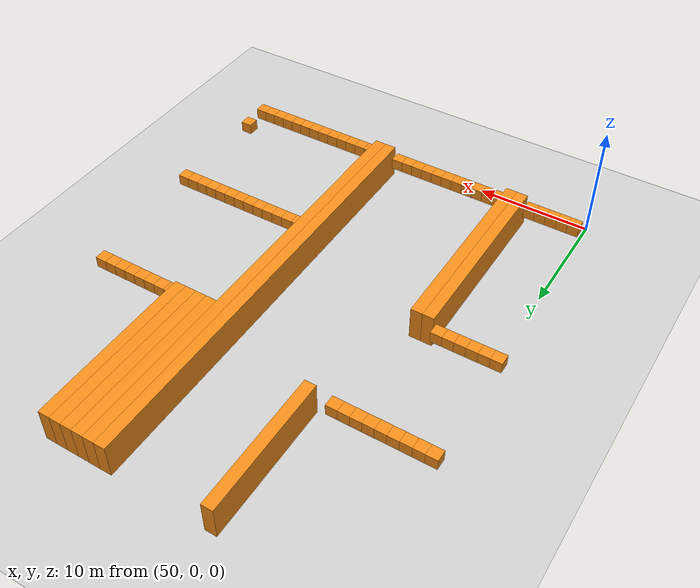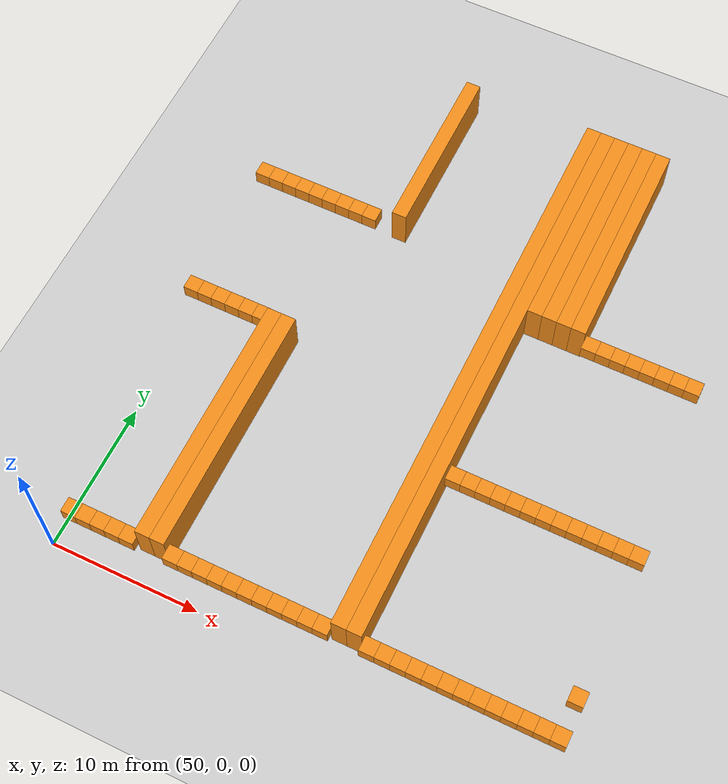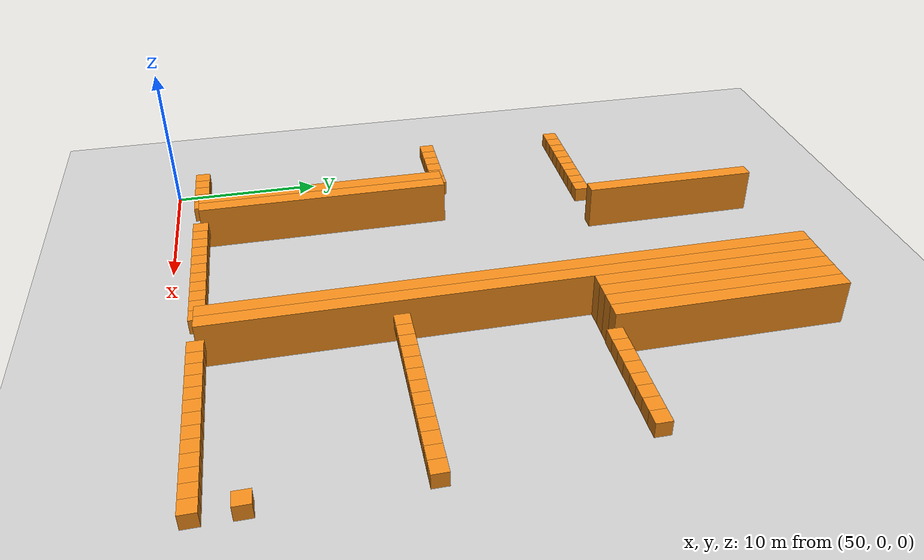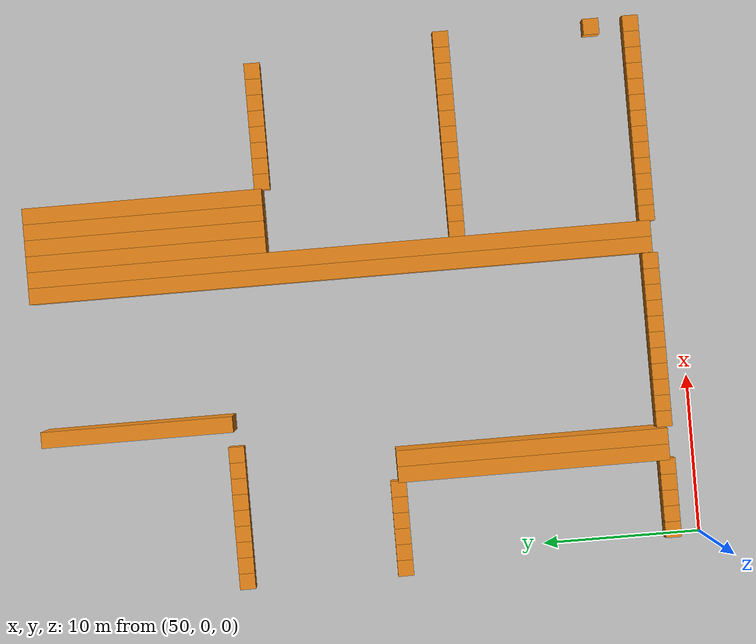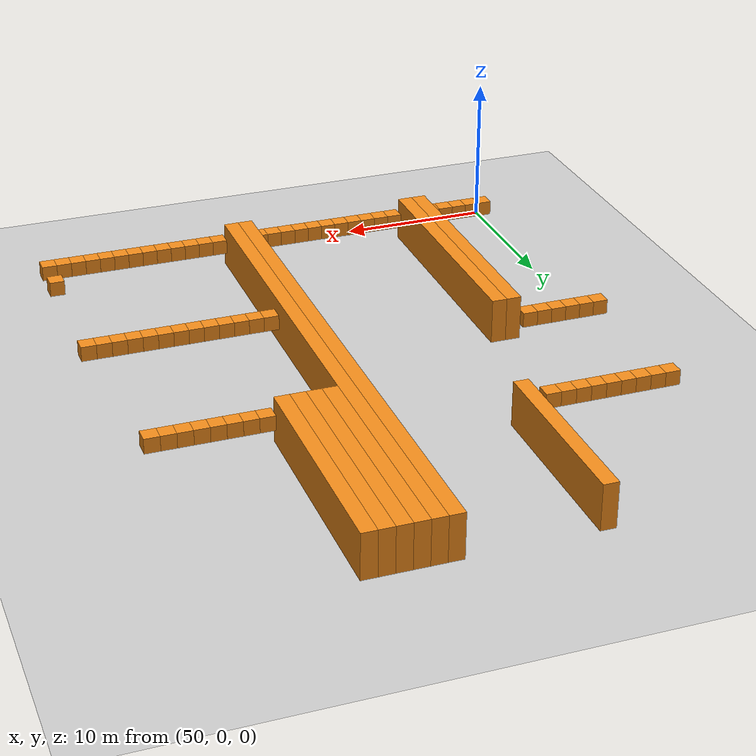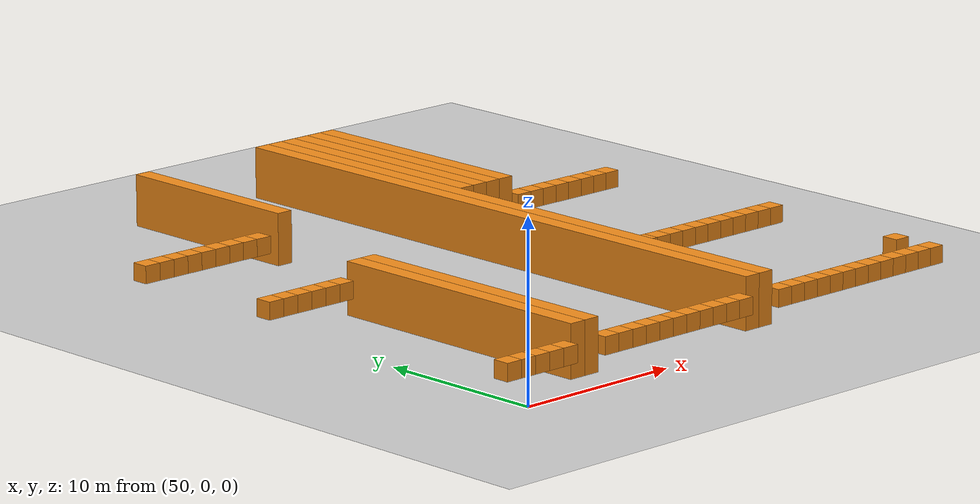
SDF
<sdf version="1.6">
 <world name="default">
  <include><uri>model://ground_plane</uri></include>
  <model name="unit_box_535">
   <pose>49.50    19.00     1.50 0 0 0</pose>
   <static>1</static>
   <link name="link">
    <inertial>
     <mass>5000</mass>
     <inertia><ixx>200</ixx><ixy>0</ixy><ixz>0</ixz><iyy>200</iyy><iyz>0</iyz><izz>200</izz></inertia>
    </inertial>
    <collision name="collision"><geometry><box><size>1 1 1</size></box></geometry></collision>
    <visual name="visual">
     <geometry><box><size>1 1 1</size></box></geometry>
     <material>
      <script><name>Gazebo/Orange</name><uri>file://media/materials/scripts/gazebo.material</uri></script>
     </material>
    </visual>
   </link>
  </model>
  <model name="unit_box_536">
   <pose>49.50    29.00     1.50 0 0 0</pose>
   <static>1</static>
   <link name="link">
    <inertial>
     <mass>5000</mass>
     <inertia><ixx>200</ixx><ixy>0</ixy><ixz>0</ixz><iyy>200</iyy><iyz>0</iyz><izz>200</izz></inertia>
    </inertial>
    <collision name="collision"><geometry><box><size>1 1 1</size></box></geometry></collision>
    <visual name="visual">
     <geometry><box><size>1 1 1</size></box></geometry>
     <material>
      <script><name>Gazebo/Orange</name><uri>file://media/materials/scripts/gazebo.material</uri></script>
     </material>
    </visual>
   </link>
  </model>
  <model name="unit_box_549">
   <pose>50.50     2.00     1.50 0 0 0</pose>
   <static>1</static>
   <link name="link">
    <inertial>
     <mass>5000</mass>
     <inertia><ixx>200</ixx><ixy>0</ixy><ixz>0</ixz><iyy>200</iyy><iyz>0</iyz><izz>200</izz></inertia>
    </inertial>
    <collision name="collision"><geometry><box><size>1 1 1</size></box></geometry></collision>
    <visual name="visual">
     <geometry><box><size>1 1 1</size></box></geometry>
     <material>
      <script><name>Gazebo/Orange</name><uri>file://media/materials/scripts/gazebo.material</uri></script>
     </material>
    </visual>
   </link>
  </model>
  <model name="unit_box_550">
   <pose>50.50    19.00     1.50 0 0 0</pose>
   <static>1</static>
   <link name="link">
    <inertial>
     <mass>5000</mass>
     <inertia><ixx>200</ixx><ixy>0</ixy><ixz>0</ixz><iyy>200</iyy><iyz>0</iyz><izz>200</izz></inertia>
    </inertial>
    <collision name="collision"><geometry><box><size>1 1 1</size></box></geometry></collision>
    <visual name="visual">
     <geometry><box><size>1 1 1</size></box></geometry>
     <material>
      <script><name>Gazebo/Orange</name><uri>file://media/materials/scripts/gazebo.material</uri></script>
     </material>
    </visual>
   </link>
  </model>
  <model name="unit_box_551">
   <pose>50.50    29.00     1.50 0 0 0</pose>
   <static>1</static>
   <link name="link">
    <inertial>
     <mass>5000</mass>
     <inertia><ixx>200</ixx><ixy>0</ixy><ixz>0</ixz><iyy>200</iyy><iyz>0</iyz><izz>200</izz></inertia>
    </inertial>
    <collision name="collision"><geometry><box><size>1 1 1</size></box></geometry></collision>
    <visual name="visual">
     <geometry><box><size>1 1 1</size></box></geometry>
     <material>
      <script><name>Gazebo/Orange</name><uri>file://media/materials/scripts/gazebo.material</uri></script>
     </material>
    </visual>
   </link>
  </model>
  <model name="unit_box_561">
   <pose>51.50     2.00     1.50 0 0 0</pose>
   <static>1</static>
   <link name="link">
    <inertial>
     <mass>5000</mass>
     <inertia><ixx>200</ixx><ixy>0</ixy><ixz>0</ixz><iyy>200</iyy><iyz>0</iyz><izz>200</izz></inertia>
    </inertial>
    <collision name="collision"><geometry><box><size>1 1 1</size></box></geometry></collision>
    <visual name="visual">
     <geometry><box><size>1 1 1</size></box></geometry>
     <material>
      <script><name>Gazebo/Orange</name><uri>file://media/materials/scripts/gazebo.material</uri></script>
     </material>
    </visual>
   </link>
  </model>
  <model name="unit_box_562">
   <pose>51.50    19.00     1.50 0 0 0</pose>
   <static>1</static>
   <link name="link">
    <inertial>
     <mass>5000</mass>
     <inertia><ixx>200</ixx><ixy>0</ixy><ixz>0</ixz><iyy>200</iyy><iyz>0</iyz><izz>200</izz></inertia>
    </inertial>
    <collision name="collision"><geometry><box><size>1 1 1</size></box></geometry></collision>
    <visual name="visual">
     <geometry><box><size>1 1 1</size></box></geometry>
     <material>
      <script><name>Gazebo/Orange</name><uri>file://media/materials/scripts/gazebo.material</uri></script>
     </material>
    </visual>
   </link>
  </model>
  <model name="unit_box_563">
   <pose>51.50    29.00     1.50 0 0 0</pose>
   <static>1</static>
   <link name="link">
    <inertial>
     <mass>5000</mass>
     <inertia><ixx>200</ixx><ixy>0</ixy><ixz>0</ixz><iyy>200</iyy><iyz>0</iyz><izz>200</izz></inertia>
    </inertial>
    <collision name="collision"><geometry><box><size>1 1 1</size></box></geometry></collision>
    <visual name="visual">
     <geometry><box><size>1 1 1</size></box></geometry>
     <material>
      <script><name>Gazebo/Orange</name><uri>file://media/materials/scripts/gazebo.material</uri></script>
     </material>
    </visual>
   </link>
  </model>
  <model name="unit_box_572">
   <pose>52.50     2.00     1.50 0 0 0</pose>
   <static>1</static>
   <link name="link">
    <inertial>
     <mass>5000</mass>
     <inertia><ixx>200</ixx><ixy>0</ixy><ixz>0</ixz><iyy>200</iyy><iyz>0</iyz><izz>200</izz></inertia>
    </inertial>
    <collision name="collision"><geometry><box><size>1 1 1</size></box></geometry></collision>
    <visual name="visual">
     <geometry><box><size>1 1 1</size></box></geometry>
     <material>
      <script><name>Gazebo/Orange</name><uri>file://media/materials/scripts/gazebo.material</uri></script>
     </material>
    </visual>
   </link>
  </model>
  <model name="unit_box_573">
   <pose>52.50    19.00     1.50 0 0 0</pose>
   <static>1</static>
   <link name="link">
    <inertial>
     <mass>5000</mass>
     <inertia><ixx>200</ixx><ixy>0</ixy><ixz>0</ixz><iyy>200</iyy><iyz>0</iyz><izz>200</izz></inertia>
    </inertial>
    <collision name="collision"><geometry><box><size>1 1 1</size></box></geometry></collision>
    <visual name="visual">
     <geometry><box><size>1 1 1</size></box></geometry>
     <material>
      <script><name>Gazebo/Orange</name><uri>file://media/materials/scripts/gazebo.material</uri></script>
     </material>
    </visual>
   </link>
  </model>
  <model name="unit_box_574">
   <pose>52.50    29.00     1.50 0 0 0</pose>
   <static>1</static>
   <link name="link">
    <inertial>
     <mass>5000</mass>
     <inertia><ixx>200</ixx><ixy>0</ixy><ixz>0</ixz><iyy>200</iyy><iyz>0</iyz><izz>200</izz></inertia>
    </inertial>
    <collision name="collision"><geometry><box><size>1 1 1</size></box></geometry></collision>
    <visual name="visual">
     <geometry><box><size>1 1 1</size></box></geometry>
     <material>
      <script><name>Gazebo/Orange</name><uri>file://media/materials/scripts/gazebo.material</uri></script>
     </material>
    </visual>
   </link>
  </model>
  <model name="unit_box_582">
   <pose>53.50     2.00     1.50 0 0 0</pose>
   <static>1</static>
   <link name="link">
    <inertial>
     <mass>5000</mass>
     <inertia><ixx>200</ixx><ixy>0</ixy><ixz>0</ixz><iyy>200</iyy><iyz>0</iyz><izz>200</izz></inertia>
    </inertial>
    <collision name="collision"><geometry><box><size>1 1 1</size></box></geometry></collision>
    <visual name="visual">
     <geometry><box><size>1 1 1</size></box></geometry>
     <material>
      <script><name>Gazebo/Orange</name><uri>file://media/materials/scripts/gazebo.material</uri></script>
     </material>
    </visual>
   </link>
  </model>
  <model name="unit_box_583">
   <pose>53.50    19.00     1.50 0 0 0</pose>
   <static>1</static>
   <link name="link">
    <inertial>
     <mass>5000</mass>
     <inertia><ixx>200</ixx><ixy>0</ixy><ixz>0</ixz><iyy>200</iyy><iyz>0</iyz><izz>200</izz></inertia>
    </inertial>
    <collision name="collision"><geometry><box><size>1 1 1</size></box></geometry></collision>
    <visual name="visual">
     <geometry><box><size>1 1 1</size></box></geometry>
     <material>
      <script><name>Gazebo/Orange</name><uri>file://media/materials/scripts/gazebo.material</uri></script>
     </material>
    </visual>
   </link>
  </model>
  <model name="unit_box_584">
   <pose>53.50    29.00     1.50 0 0 0</pose>
   <static>1</static>
   <link name="link">
    <inertial>
     <mass>5000</mass>
     <inertia><ixx>200</ixx><ixy>0</ixy><ixz>0</ixz><iyy>200</iyy><iyz>0</iyz><izz>200</izz></inertia>
    </inertial>
    <collision name="collision"><geometry><box><size>1 1 1</size></box></geometry></collision>
    <visual name="visual">
     <geometry><box><size>1 1 1</size></box></geometry>
     <material>
      <script><name>Gazebo/Orange</name><uri>file://media/materials/scripts/gazebo.material</uri></script>
     </material>
    </visual>
   </link>
  </model>
  <model name="unit_box_593">
   <pose>54.50     2.00     1.50 0 0 0</pose>
   <static>1</static>
   <link name="link">
    <inertial>
     <mass>5000</mass>
     <inertia><ixx>200</ixx><ixy>0</ixy><ixz>0</ixz><iyy>200</iyy><iyz>0</iyz><izz>200</izz></inertia>
    </inertial>
    <collision name="collision"><geometry><box><size>1 1 1</size></box></geometry></collision>
    <visual name="visual">
     <geometry><box><size>1 1 1</size></box></geometry>
     <material>
      <script><name>Gazebo/Orange</name><uri>file://media/materials/scripts/gazebo.material</uri></script>
     </material>
    </visual>
   </link>
  </model>
  <model name="unit_box_594">
   <pose>54.50    19.00     1.50 0 0 0</pose>
   <static>1</static>
   <link name="link">
    <inertial>
     <mass>5000</mass>
     <inertia><ixx>200</ixx><ixy>0</ixy><ixz>0</ixz><iyy>200</iyy><iyz>0</iyz><izz>200</izz></inertia>
    </inertial>
    <collision name="collision"><geometry><box><size>1 1 1</size></box></geometry></collision>
    <visual name="visual">
     <geometry><box><size>1 1 1</size></box></geometry>
     <material>
      <script><name>Gazebo/Orange</name><uri>file://media/materials/scripts/gazebo.material</uri></script>
     </material>
    </visual>
   </link>
  </model>
  <model name="unit_box_595">
   <pose>54.50    29.00     1.50 0 0 0</pose>
   <static>1</static>
   <link name="link">
    <inertial>
     <mass>5000</mass>
     <inertia><ixx>200</ixx><ixy>0</ixy><ixz>0</ixz><iyy>200</iyy><iyz>0</iyz><izz>200</izz></inertia>
    </inertial>
    <collision name="collision"><geometry><box><size>1 1 1</size></box></geometry></collision>
    <visual name="visual">
     <geometry><box><size>1 1 1</size></box></geometry>
     <material>
      <script><name>Gazebo/Orange</name><uri>file://media/materials/scripts/gazebo.material</uri></script>
     </material>
    </visual>
   </link>
  </model>
  <model name="unit_box_602">
   <pose>55.50    10.50     1.50 0 0 0</pose>
   <static>1</static>
   <link name="link">
    <inertial>
     <mass>5000</mass>
     <inertia><ixx>200</ixx><ixy>0</ixy><ixz>0</ixz><iyy>200</iyy><iyz>0</iyz><izz>200</izz></inertia>
    </inertial>
    <collision name="collision"><geometry><box><size>1 17 3</size></box></geometry></collision>
    <visual name="visual">
     <geometry><box><size>1 17 3</size></box></geometry>
     <material>
      <script><name>Gazebo/Orange</name><uri>file://media/materials/scripts/gazebo.material</uri></script>
     </material>
    </visual>
   </link>
  </model>
  <model name="unit_box_603">
   <pose>55.50    29.00     1.50 0 0 0</pose>
   <static>1</static>
   <link name="link">
    <inertial>
     <mass>5000</mass>
     <inertia><ixx>200</ixx><ixy>0</ixy><ixz>0</ixz><iyy>200</iyy><iyz>0</iyz><izz>200</izz></inertia>
    </inertial>
    <collision name="collision"><geometry><box><size>1 1 1</size></box></geometry></collision>
    <visual name="visual">
     <geometry><box><size>1 1 1</size></box></geometry>
     <material>
      <script><name>Gazebo/Orange</name><uri>file://media/materials/scripts/gazebo.material</uri></script>
     </material>
    </visual>
   </link>
  </model>
  <model name="unit_box_611">
   <pose>56.50    10.50     1.50 0 0 0</pose>
   <static>1</static>
   <link name="link">
    <inertial>
     <mass>5000</mass>
     <inertia><ixx>200</ixx><ixy>0</ixy><ixz>0</ixz><iyy>200</iyy><iyz>0</iyz><izz>200</izz></inertia>
    </inertial>
    <collision name="collision"><geometry><box><size>1 17 3</size></box></geometry></collision>
    <visual name="visual">
     <geometry><box><size>1 17 3</size></box></geometry>
     <material>
      <script><name>Gazebo/Orange</name><uri>file://media/materials/scripts/gazebo.material</uri></script>
     </material>
    </visual>
   </link>
  </model>
  <model name="unit_box_612">
   <pose>56.50    29.00     1.50 0 0 0</pose>
   <static>1</static>
   <link name="link">
    <inertial>
     <mass>5000</mass>
     <inertia><ixx>200</ixx><ixy>0</ixy><ixz>0</ixz><iyy>200</iyy><iyz>0</iyz><izz>200</izz></inertia>
    </inertial>
    <collision name="collision"><geometry><box><size>1 1 1</size></box></geometry></collision>
    <visual name="visual">
     <geometry><box><size>1 1 1</size></box></geometry>
     <material>
      <script><name>Gazebo/Orange</name><uri>file://media/materials/scripts/gazebo.material</uri></script>
     </material>
    </visual>
   </link>
  </model>
  <model name="unit_box_621">
   <pose>57.50     2.00     1.50 0 0 0</pose>
   <static>1</static>
   <link name="link">
    <inertial>
     <mass>5000</mass>
     <inertia><ixx>200</ixx><ixy>0</ixy><ixz>0</ixz><iyy>200</iyy><iyz>0</iyz><izz>200</izz></inertia>
    </inertial>
    <collision name="collision"><geometry><box><size>1 1 1</size></box></geometry></collision>
    <visual name="visual">
     <geometry><box><size>1 1 1</size></box></geometry>
     <material>
      <script><name>Gazebo/Orange</name><uri>file://media/materials/scripts/gazebo.material</uri></script>
     </material>
    </visual>
   </link>
  </model>
  <model name="unit_box_622">
   <pose>57.50    29.00     1.50 0 0 0</pose>
   <static>1</static>
   <link name="link">
    <inertial>
     <mass>5000</mass>
     <inertia><ixx>200</ixx><ixy>0</ixy><ixz>0</ixz><iyy>200</iyy><iyz>0</iyz><izz>200</izz></inertia>
    </inertial>
    <collision name="collision"><geometry><box><size>1 1 1</size></box></geometry></collision>
    <visual name="visual">
     <geometry><box><size>1 1 1</size></box></geometry>
     <material>
      <script><name>Gazebo/Orange</name><uri>file://media/materials/scripts/gazebo.material</uri></script>
     </material>
    </visual>
   </link>
  </model>
  <model name="unit_box_632">
   <pose>58.50     2.00     1.50 0 0 0</pose>
   <static>1</static>
   <link name="link">
    <inertial>
     <mass>5000</mass>
     <inertia><ixx>200</ixx><ixy>0</ixy><ixz>0</ixz><iyy>200</iyy><iyz>0</iyz><izz>200</izz></inertia>
    </inertial>
    <collision name="collision"><geometry><box><size>1 1 1</size></box></geometry></collision>
    <visual name="visual">
     <geometry><box><size>1 1 1</size></box></geometry>
     <material>
      <script><name>Gazebo/Orange</name><uri>file://media/materials/scripts/gazebo.material</uri></script>
     </material>
    </visual>
   </link>
  </model>
  <model name="unit_box_642">
   <pose>59.50     2.00     1.50 0 0 0</pose>
   <static>1</static>
   <link name="link">
    <inertial>
     <mass>5000</mass>
     <inertia><ixx>200</ixx><ixy>0</ixy><ixz>0</ixz><iyy>200</iyy><iyz>0</iyz><izz>200</izz></inertia>
    </inertial>
    <collision name="collision"><geometry><box><size>1 1 1</size></box></geometry></collision>
    <visual name="visual">
     <geometry><box><size>1 1 1</size></box></geometry>
     <material>
      <script><name>Gazebo/Orange</name><uri>file://media/materials/scripts/gazebo.material</uri></script>
     </material>
    </visual>
   </link>
  </model>
  <model name="unit_box_643">
   <pose>59.50    35.00     1.50 0 0 0</pose>
   <static>1</static>
   <link name="link">
    <inertial>
     <mass>5000</mass>
     <inertia><ixx>200</ixx><ixy>0</ixy><ixz>0</ixz><iyy>200</iyy><iyz>0</iyz><izz>200</izz></inertia>
    </inertial>
    <collision name="collision"><geometry><box><size>1 12 3</size></box></geometry></collision>
    <visual name="visual">
     <geometry><box><size>1 12 3</size></box></geometry>
     <material>
      <script><name>Gazebo/Orange</name><uri>file://media/materials/scripts/gazebo.material</uri></script>
     </material>
    </visual>
   </link>
  </model>
  <model name="unit_box_654">
   <pose>60.50     2.00     1.50 0 0 0</pose>
   <static>1</static>
   <link name="link">
    <inertial>
     <mass>5000</mass>
     <inertia><ixx>200</ixx><ixy>0</ixy><ixz>0</ixz><iyy>200</iyy><iyz>0</iyz><izz>200</izz></inertia>
    </inertial>
    <collision name="collision"><geometry><box><size>1 1 1</size></box></geometry></collision>
    <visual name="visual">
     <geometry><box><size>1 1 1</size></box></geometry>
     <material>
      <script><name>Gazebo/Orange</name><uri>file://media/materials/scripts/gazebo.material</uri></script>
     </material>
    </visual>
   </link>
  </model>
  <model name="unit_box_666">
   <pose>61.50     2.00     1.50 0 0 0</pose>
   <static>1</static>
   <link name="link">
    <inertial>
     <mass>5000</mass>
     <inertia><ixx>200</ixx><ixy>0</ixy><ixz>0</ixz><iyy>200</iyy><iyz>0</iyz><izz>200</izz></inertia>
    </inertial>
    <collision name="collision"><geometry><box><size>1 1 1</size></box></geometry></collision>
    <visual name="visual">
     <geometry><box><size>1 1 1</size></box></geometry>
     <material>
      <script><name>Gazebo/Orange</name><uri>file://media/materials/scripts/gazebo.material</uri></script>
     </material>
    </visual>
   </link>
  </model>
  <model name="unit_box_676">
   <pose>62.50     2.00     1.50 0 0 0</pose>
   <static>1</static>
   <link name="link">
    <inertial>
     <mass>5000</mass>
     <inertia><ixx>200</ixx><ixy>0</ixy><ixz>0</ixz><iyy>200</iyy><iyz>0</iyz><izz>200</izz></inertia>
    </inertial>
    <collision name="collision"><geometry><box><size>1 1 1</size></box></geometry></collision>
    <visual name="visual">
     <geometry><box><size>1 1 1</size></box></geometry>
     <material>
      <script><name>Gazebo/Orange</name><uri>file://media/materials/scripts/gazebo.material</uri></script>
     </material>
    </visual>
   </link>
  </model>
  <model name="unit_box_686">
   <pose>63.50     2.00     1.50 0 0 0</pose>
   <static>1</static>
   <link name="link">
    <inertial>
     <mass>5000</mass>
     <inertia><ixx>200</ixx><ixy>0</ixy><ixz>0</ixz><iyy>200</iyy><iyz>0</iyz><izz>200</izz></inertia>
    </inertial>
    <collision name="collision"><geometry><box><size>1 1 1</size></box></geometry></collision>
    <visual name="visual">
     <geometry><box><size>1 1 1</size></box></geometry>
     <material>
      <script><name>Gazebo/Orange</name><uri>file://media/materials/scripts/gazebo.material</uri></script>
     </material>
    </visual>
   </link>
  </model>
  <model name="unit_box_696">
   <pose>64.50     2.00     1.50 0 0 0</pose>
   <static>1</static>
   <link name="link">
    <inertial>
     <mass>5000</mass>
     <inertia><ixx>200</ixx><ixy>0</ixy><ixz>0</ixz><iyy>200</iyy><iyz>0</iyz><izz>200</izz></inertia>
    </inertial>
    <collision name="collision"><geometry><box><size>1 1 1</size></box></geometry></collision>
    <visual name="visual">
     <geometry><box><size>1 1 1</size></box></geometry>
     <material>
      <script><name>Gazebo/Orange</name><uri>file://media/materials/scripts/gazebo.material</uri></script>
     </material>
    </visual>
   </link>
  </model>
  <model name="unit_box_705">
   <pose>65.50     2.00     1.50 0 0 0</pose>
   <static>1</static>
   <link name="link">
    <inertial>
     <mass>5000</mass>
     <inertia><ixx>200</ixx><ixy>0</ixy><ixz>0</ixz><iyy>200</iyy><iyz>0</iyz><izz>200</izz></inertia>
    </inertial>
    <collision name="collision"><geometry><box><size>1 1 1</size></box></geometry></collision>
    <visual name="visual">
     <geometry><box><size>1 1 1</size></box></geometry>
     <material>
      <script><name>Gazebo/Orange</name><uri>file://media/materials/scripts/gazebo.material</uri></script>
     </material>
    </visual>
   </link>
  </model>
  <model name="unit_box_714">
   <pose>66.50     2.00     1.50 0 0 0</pose>
   <static>1</static>
   <link name="link">
    <inertial>
     <mass>5000</mass>
     <inertia><ixx>200</ixx><ixy>0</ixy><ixz>0</ixz><iyy>200</iyy><iyz>0</iyz><izz>200</izz></inertia>
    </inertial>
    <collision name="collision"><geometry><box><size>1 1 1</size></box></geometry></collision>
    <visual name="visual">
     <geometry><box><size>1 1 1</size></box></geometry>
     <material>
      <script><name>Gazebo/Orange</name><uri>file://media/materials/scripts/gazebo.material</uri></script>
     </material>
    </visual>
   </link>
  </model>
  <model name="unit_box_723">
   <pose>67.50     2.00     1.50 0 0 0</pose>
   <static>1</static>
   <link name="link">
    <inertial>
     <mass>5000</mass>
     <inertia><ixx>200</ixx><ixy>0</ixy><ixz>0</ixz><iyy>200</iyy><iyz>0</iyz><izz>200</izz></inertia>
    </inertial>
    <collision name="collision"><geometry><box><size>1 1 1</size></box></geometry></collision>
    <visual name="visual">
     <geometry><box><size>1 1 1</size></box></geometry>
     <material>
      <script><name>Gazebo/Orange</name><uri>file://media/materials/scripts/gazebo.material</uri></script>
     </material>
    </visual>
   </link>
  </model>
  <model name="unit_box_733">
   <pose>68.50    21.50     1.50 0 0 0</pose>
   <static>1</static>
   <link name="link">
    <inertial>
     <mass>5000</mass>
     <inertia><ixx>200</ixx><ixy>0</ixy><ixz>0</ixz><iyy>200</iyy><iyz>0</iyz><izz>200</izz></inertia>
    </inertial>
    <collision name="collision"><geometry><box><size>1 39 3</size></box></geometry></collision>
    <visual name="visual">
     <geometry><box><size>1 39 3</size></box></geometry>
     <material>
      <script><name>Gazebo/Orange</name><uri>file://media/materials/scripts/gazebo.material</uri></script>
     </material>
    </visual>
   </link>
  </model>
  <model name="unit_box_743">
   <pose>69.50    21.50     1.50 0 0 0</pose>
   <static>1</static>
   <link name="link">
    <inertial>
     <mass>5000</mass>
     <inertia><ixx>200</ixx><ixy>0</ixy><ixz>0</ixz><iyy>200</iyy><iyz>0</iyz><izz>200</izz></inertia>
    </inertial>
    <collision name="collision"><geometry><box><size>1 39 3</size></box></geometry></collision>
    <visual name="visual">
     <geometry><box><size>1 39 3</size></box></geometry>
     <material>
      <script><name>Gazebo/Orange</name><uri>file://media/materials/scripts/gazebo.material</uri></script>
     </material>
    </visual>
   </link>
  </model>
  <model name="unit_box_753">
   <pose>70.50     2.00     1.50 0 0 0</pose>
   <static>1</static>
   <link name="link">
    <inertial>
     <mass>5000</mass>
     <inertia><ixx>200</ixx><ixy>0</ixy><ixz>0</ixz><iyy>200</iyy><iyz>0</iyz><izz>200</izz></inertia>
    </inertial>
    <collision name="collision"><geometry><box><size>1 1 1</size></box></geometry></collision>
    <visual name="visual">
     <geometry><box><size>1 1 1</size></box></geometry>
     <material>
      <script><name>Gazebo/Orange</name><uri>file://media/materials/scripts/gazebo.material</uri></script>
     </material>
    </visual>
   </link>
  </model>
  <model name="unit_box_754">
   <pose>70.50    14.00     1.50 0 0 0</pose>
   <static>1</static>
   <link name="link">
    <inertial>
     <mass>5000</mass>
     <inertia><ixx>200</ixx><ixy>0</ixy><ixz>0</ixz><iyy>200</iyy><iyz>0</iyz><izz>200</izz></inertia>
    </inertial>
    <collision name="collision"><geometry><box><size>1 1 1</size></box></geometry></collision>
    <visual name="visual">
     <geometry><box><size>1 1 1</size></box></geometry>
     <material>
      <script><name>Gazebo/Orange</name><uri>file://media/materials/scripts/gazebo.material</uri></script>
     </material>
    </visual>
   </link>
  </model>
  <model name="unit_box_755">
   <pose>70.50    33.50     1.50 0 0 0</pose>
   <static>1</static>
   <link name="link">
    <inertial>
     <mass>5000</mass>
     <inertia><ixx>200</ixx><ixy>0</ixy><ixz>0</ixz><iyy>200</iyy><iyz>0</iyz><izz>200</izz></inertia>
    </inertial>
    <collision name="collision"><geometry><box><size>1 15 3</size></box></geometry></collision>
    <visual name="visual">
     <geometry><box><size>1 15 3</size></box></geometry>
     <material>
      <script><name>Gazebo/Orange</name><uri>file://media/materials/scripts/gazebo.material</uri></script>
     </material>
    </visual>
   </link>
  </model>
  <model name="unit_box_764">
   <pose>71.50     2.00     1.50 0 0 0</pose>
   <static>1</static>
   <link name="link">
    <inertial>
     <mass>5000</mass>
     <inertia><ixx>200</ixx><ixy>0</ixy><ixz>0</ixz><iyy>200</iyy><iyz>0</iyz><izz>200</izz></inertia>
    </inertial>
    <collision name="collision"><geometry><box><size>1 1 1</size></box></geometry></collision>
    <visual name="visual">
     <geometry><box><size>1 1 1</size></box></geometry>
     <material>
      <script><name>Gazebo/Orange</name><uri>file://media/materials/scripts/gazebo.material</uri></script>
     </material>
    </visual>
   </link>
  </model>
  <model name="unit_box_765">
   <pose>71.50    14.00     1.50 0 0 0</pose>
   <static>1</static>
   <link name="link">
    <inertial>
     <mass>5000</mass>
     <inertia><ixx>200</ixx><ixy>0</ixy><ixz>0</ixz><iyy>200</iyy><iyz>0</iyz><izz>200</izz></inertia>
    </inertial>
    <collision name="collision"><geometry><box><size>1 1 1</size></box></geometry></collision>
    <visual name="visual">
     <geometry><box><size>1 1 1</size></box></geometry>
     <material>
      <script><name>Gazebo/Orange</name><uri>file://media/materials/scripts/gazebo.material</uri></script>
     </material>
    </visual>
   </link>
  </model>
  <model name="unit_box_766">
   <pose>71.50    33.50     1.50 0 0 0</pose>
   <static>1</static>
   <link name="link">
    <inertial>
     <mass>5000</mass>
     <inertia><ixx>200</ixx><ixy>0</ixy><ixz>0</ixz><iyy>200</iyy><iyz>0</iyz><izz>200</izz></inertia>
    </inertial>
    <collision name="collision"><geometry><box><size>1 15 3</size></box></geometry></collision>
    <visual name="visual">
     <geometry><box><size>1 15 3</size></box></geometry>
     <material>
      <script><name>Gazebo/Orange</name><uri>file://media/materials/scripts/gazebo.material</uri></script>
     </material>
    </visual>
   </link>
  </model>
  <model name="unit_box_775">
   <pose>72.50     2.00     1.50 0 0 0</pose>
   <static>1</static>
   <link name="link">
    <inertial>
     <mass>5000</mass>
     <inertia><ixx>200</ixx><ixy>0</ixy><ixz>0</ixz><iyy>200</iyy><iyz>0</iyz><izz>200</izz></inertia>
    </inertial>
    <collision name="collision"><geometry><box><size>1 1 1</size></box></geometry></collision>
    <visual name="visual">
     <geometry><box><size>1 1 1</size></box></geometry>
     <material>
      <script><name>Gazebo/Orange</name><uri>file://media/materials/scripts/gazebo.material</uri></script>
     </material>
    </visual>
   </link>
  </model>
  <model name="unit_box_776">
   <pose>72.50    14.00     1.50 0 0 0</pose>
   <static>1</static>
   <link name="link">
    <inertial>
     <mass>5000</mass>
     <inertia><ixx>200</ixx><ixy>0</ixy><ixz>0</ixz><iyy>200</iyy><iyz>0</iyz><izz>200</izz></inertia>
    </inertial>
    <collision name="collision"><geometry><box><size>1 1 1</size></box></geometry></collision>
    <visual name="visual">
     <geometry><box><size>1 1 1</size></box></geometry>
     <material>
      <script><name>Gazebo/Orange</name><uri>file://media/materials/scripts/gazebo.material</uri></script>
     </material>
    </visual>
   </link>
  </model>
  <model name="unit_box_777">
   <pose>72.50    33.50     1.50 0 0 0</pose>
   <static>1</static>
   <link name="link">
    <inertial>
     <mass>5000</mass>
     <inertia><ixx>200</ixx><ixy>0</ixy><ixz>0</ixz><iyy>200</iyy><iyz>0</iyz><izz>200</izz></inertia>
    </inertial>
    <collision name="collision"><geometry><box><size>1 15 3</size></box></geometry></collision>
    <visual name="visual">
     <geometry><box><size>1 15 3</size></box></geometry>
     <material>
      <script><name>Gazebo/Orange</name><uri>file://media/materials/scripts/gazebo.material</uri></script>
     </material>
    </visual>
   </link>
  </model>
  <model name="unit_box_784">
   <pose>73.50     2.00     1.50 0 0 0</pose>
   <static>1</static>
   <link name="link">
    <inertial>
     <mass>5000</mass>
     <inertia><ixx>200</ixx><ixy>0</ixy><ixz>0</ixz><iyy>200</iyy><iyz>0</iyz><izz>200</izz></inertia>
    </inertial>
    <collision name="collision"><geometry><box><size>1 1 1</size></box></geometry></collision>
    <visual name="visual">
     <geometry><box><size>1 1 1</size></box></geometry>
     <material>
      <script><name>Gazebo/Orange</name><uri>file://media/materials/scripts/gazebo.material</uri></script>
     </material>
    </visual>
   </link>
  </model>
  <model name="unit_box_785">
   <pose>73.50    14.00     1.50 0 0 0</pose>
   <static>1</static>
   <link name="link">
    <inertial>
     <mass>5000</mass>
     <inertia><ixx>200</ixx><ixy>0</ixy><ixz>0</ixz><iyy>200</iyy><iyz>0</iyz><izz>200</izz></inertia>
    </inertial>
    <collision name="collision"><geometry><box><size>1 1 1</size></box></geometry></collision>
    <visual name="visual">
     <geometry><box><size>1 1 1</size></box></geometry>
     <material>
      <script><name>Gazebo/Orange</name><uri>file://media/materials/scripts/gazebo.material</uri></script>
     </material>
    </visual>
   </link>
  </model>
  <model name="unit_box_786">
   <pose>73.50    33.50     1.50 0 0 0</pose>
   <static>1</static>
   <link name="link">
    <inertial>
     <mass>5000</mass>
     <inertia><ixx>200</ixx><ixy>0</ixy><ixz>0</ixz><iyy>200</iyy><iyz>0</iyz><izz>200</izz></inertia>
    </inertial>
    <collision name="collision"><geometry><box><size>1 15 3</size></box></geometry></collision>
    <visual name="visual">
     <geometry><box><size>1 15 3</size></box></geometry>
     <material>
      <script><name>Gazebo/Orange</name><uri>file://media/materials/scripts/gazebo.material</uri></script>
     </material>
    </visual>
   </link>
  </model>
  <model name="unit_box_791">
   <pose>74.50     2.00     1.50 0 0 0</pose>
   <static>1</static>
   <link name="link">
    <inertial>
     <mass>5000</mass>
     <inertia><ixx>200</ixx><ixy>0</ixy><ixz>0</ixz><iyy>200</iyy><iyz>0</iyz><izz>200</izz></inertia>
    </inertial>
    <collision name="collision"><geometry><box><size>1 1 1</size></box></geometry></collision>
    <visual name="visual">
     <geometry><box><size>1 1 1</size></box></geometry>
     <material>
      <script><name>Gazebo/Orange</name><uri>file://media/materials/scripts/gazebo.material</uri></script>
     </material>
    </visual>
   </link>
  </model>
  <model name="unit_box_792">
   <pose>74.50    14.00     1.50 0 0 0</pose>
   <static>1</static>
   <link name="link">
    <inertial>
     <mass>5000</mass>
     <inertia><ixx>200</ixx><ixy>0</ixy><ixz>0</ixz><iyy>200</iyy><iyz>0</iyz><izz>200</izz></inertia>
    </inertial>
    <collision name="collision"><geometry><box><size>1 1 1</size></box></geometry></collision>
    <visual name="visual">
     <geometry><box><size>1 1 1</size></box></geometry>
     <material>
      <script><name>Gazebo/Orange</name><uri>file://media/materials/scripts/gazebo.material</uri></script>
     </material>
    </visual>
   </link>
  </model>
  <model name="unit_box_793">
   <pose>74.50    26.00     1.50 0 0 0</pose>
   <static>1</static>
   <link name="link">
    <inertial>
     <mass>5000</mass>
     <inertia><ixx>200</ixx><ixy>0</ixy><ixz>0</ixz><iyy>200</iyy><iyz>0</iyz><izz>200</izz></inertia>
    </inertial>
    <collision name="collision"><geometry><box><size>1 1 1</size></box></geometry></collision>
    <visual name="visual">
     <geometry><box><size>1 1 1</size></box></geometry>
     <material>
      <script><name>Gazebo/Orange</name><uri>file://media/materials/scripts/gazebo.material</uri></script>
     </material>
    </visual>
   </link>
  </model>
  <model name="unit_box_798">
   <pose>75.50     2.00     1.50 0 0 0</pose>
   <static>1</static>
   <link name="link">
    <inertial>
     <mass>5000</mass>
     <inertia><ixx>200</ixx><ixy>0</ixy><ixz>0</ixz><iyy>200</iyy><iyz>0</iyz><izz>200</izz></inertia>
    </inertial>
    <collision name="collision"><geometry><box><size>1 1 1</size></box></geometry></collision>
    <visual name="visual">
     <geometry><box><size>1 1 1</size></box></geometry>
     <material>
      <script><name>Gazebo/Orange</name><uri>file://media/materials/scripts/gazebo.material</uri></script>
     </material>
    </visual>
   </link>
  </model>
  <model name="unit_box_799">
   <pose>75.50    14.00     1.50 0 0 0</pose>
   <static>1</static>
   <link name="link">
    <inertial>
     <mass>5000</mass>
     <inertia><ixx>200</ixx><ixy>0</ixy><ixz>0</ixz><iyy>200</iyy><iyz>0</iyz><izz>200</izz></inertia>
    </inertial>
    <collision name="collision"><geometry><box><size>1 1 1</size></box></geometry></collision>
    <visual name="visual">
     <geometry><box><size>1 1 1</size></box></geometry>
     <material>
      <script><name>Gazebo/Orange</name><uri>file://media/materials/scripts/gazebo.material</uri></script>
     </material>
    </visual>
   </link>
  </model>
  <model name="unit_box_800">
   <pose>75.50    26.00     1.50 0 0 0</pose>
   <static>1</static>
   <link name="link">
    <inertial>
     <mass>5000</mass>
     <inertia><ixx>200</ixx><ixy>0</ixy><ixz>0</ixz><iyy>200</iyy><iyz>0</iyz><izz>200</izz></inertia>
    </inertial>
    <collision name="collision"><geometry><box><size>1 1 1</size></box></geometry></collision>
    <visual name="visual">
     <geometry><box><size>1 1 1</size></box></geometry>
     <material>
      <script><name>Gazebo/Orange</name><uri>file://media/materials/scripts/gazebo.material</uri></script>
     </material>
    </visual>
   </link>
  </model>
  <model name="unit_box_804">
   <pose>76.50     2.00     1.50 0 0 0</pose>
   <static>1</static>
   <link name="link">
    <inertial>
     <mass>5000</mass>
     <inertia><ixx>200</ixx><ixy>0</ixy><ixz>0</ixz><iyy>200</iyy><iyz>0</iyz><izz>200</izz></inertia>
    </inertial>
    <collision name="collision"><geometry><box><size>1 1 1</size></box></geometry></collision>
    <visual name="visual">
     <geometry><box><size>1 1 1</size></box></geometry>
     <material>
      <script><name>Gazebo/Orange</name><uri>file://media/materials/scripts/gazebo.material</uri></script>
     </material>
    </visual>
   </link>
  </model>
  <model name="unit_box_805">
   <pose>76.50    14.00     1.50 0 0 0</pose>
   <static>1</static>
   <link name="link">
    <inertial>
     <mass>5000</mass>
     <inertia><ixx>200</ixx><ixy>0</ixy><ixz>0</ixz><iyy>200</iyy><iyz>0</iyz><izz>200</izz></inertia>
    </inertial>
    <collision name="collision"><geometry><box><size>1 1 1</size></box></geometry></collision>
    <visual name="visual">
     <geometry><box><size>1 1 1</size></box></geometry>
     <material>
      <script><name>Gazebo/Orange</name><uri>file://media/materials/scripts/gazebo.material</uri></script>
     </material>
    </visual>
   </link>
  </model>
  <model name="unit_box_806">
   <pose>76.50    26.00     1.50 0 0 0</pose>
   <static>1</static>
   <link name="link">
    <inertial>
     <mass>5000</mass>
     <inertia><ixx>200</ixx><ixy>0</ixy><ixz>0</ixz><iyy>200</iyy><iyz>0</iyz><izz>200</izz></inertia>
    </inertial>
    <collision name="collision"><geometry><box><size>1 1 1</size></box></geometry></collision>
    <visual name="visual">
     <geometry><box><size>1 1 1</size></box></geometry>
     <material>
      <script><name>Gazebo/Orange</name><uri>file://media/materials/scripts/gazebo.material</uri></script>
     </material>
    </visual>
   </link>
  </model>
  <model name="unit_box_810">
   <pose>77.50     2.00     1.50 0 0 0</pose>
   <static>1</static>
   <link name="link">
    <inertial>
     <mass>5000</mass>
     <inertia><ixx>200</ixx><ixy>0</ixy><ixz>0</ixz><iyy>200</iyy><iyz>0</iyz><izz>200</izz></inertia>
    </inertial>
    <collision name="collision"><geometry><box><size>1 1 1</size></box></geometry></collision>
    <visual name="visual">
     <geometry><box><size>1 1 1</size></box></geometry>
     <material>
      <script><name>Gazebo/Orange</name><uri>file://media/materials/scripts/gazebo.material</uri></script>
     </material>
    </visual>
   </link>
  </model>
  <model name="unit_box_811">
   <pose>77.50    14.00     1.50 0 0 0</pose>
   <static>1</static>
   <link name="link">
    <inertial>
     <mass>5000</mass>
     <inertia><ixx>200</ixx><ixy>0</ixy><ixz>0</ixz><iyy>200</iyy><iyz>0</iyz><izz>200</izz></inertia>
    </inertial>
    <collision name="collision"><geometry><box><size>1 1 1</size></box></geometry></collision>
    <visual name="visual">
     <geometry><box><size>1 1 1</size></box></geometry>
     <material>
      <script><name>Gazebo/Orange</name><uri>file://media/materials/scripts/gazebo.material</uri></script>
     </material>
    </visual>
   </link>
  </model>
  <model name="unit_box_812">
   <pose>77.50    26.00     1.50 0 0 0</pose>
   <static>1</static>
   <link name="link">
    <inertial>
     <mass>5000</mass>
     <inertia><ixx>200</ixx><ixy>0</ixy><ixz>0</ixz><iyy>200</iyy><iyz>0</iyz><izz>200</izz></inertia>
    </inertial>
    <collision name="collision"><geometry><box><size>1 1 1</size></box></geometry></collision>
    <visual name="visual">
     <geometry><box><size>1 1 1</size></box></geometry>
     <material>
      <script><name>Gazebo/Orange</name><uri>file://media/materials/scripts/gazebo.material</uri></script>
     </material>
    </visual>
   </link>
  </model>
  <model name="unit_box_816">
   <pose>78.50     2.00     1.50 0 0 0</pose>
   <static>1</static>
   <link name="link">
    <inertial>
     <mass>5000</mass>
     <inertia><ixx>200</ixx><ixy>0</ixy><ixz>0</ixz><iyy>200</iyy><iyz>0</iyz><izz>200</izz></inertia>
    </inertial>
    <collision name="collision"><geometry><box><size>1 1 1</size></box></geometry></collision>
    <visual name="visual">
     <geometry><box><size>1 1 1</size></box></geometry>
     <material>
      <script><name>Gazebo/Orange</name><uri>file://media/materials/scripts/gazebo.material</uri></script>
     </material>
    </visual>
   </link>
  </model>
  <model name="unit_box_817">
   <pose>78.50    14.00     1.50 0 0 0</pose>
   <static>1</static>
   <link name="link">
    <inertial>
     <mass>5000</mass>
     <inertia><ixx>200</ixx><ixy>0</ixy><ixz>0</ixz><iyy>200</iyy><iyz>0</iyz><izz>200</izz></inertia>
    </inertial>
    <collision name="collision"><geometry><box><size>1 1 1</size></box></geometry></collision>
    <visual name="visual">
     <geometry><box><size>1 1 1</size></box></geometry>
     <material>
      <script><name>Gazebo/Orange</name><uri>file://media/materials/scripts/gazebo.material</uri></script>
     </material>
    </visual>
   </link>
  </model>
  <model name="unit_box_818">
   <pose>78.50    26.00     1.50 0 0 0</pose>
   <static>1</static>
   <link name="link">
    <inertial>
     <mass>5000</mass>
     <inertia><ixx>200</ixx><ixy>0</ixy><ixz>0</ixz><iyy>200</iyy><iyz>0</iyz><izz>200</izz></inertia>
    </inertial>
    <collision name="collision"><geometry><box><size>1 1 1</size></box></geometry></collision>
    <visual name="visual">
     <geometry><box><size>1 1 1</size></box></geometry>
     <material>
      <script><name>Gazebo/Orange</name><uri>file://media/materials/scripts/gazebo.material</uri></script>
     </material>
    </visual>
   </link>
  </model>
  <model name="unit_box_823">
   <pose>79.50     2.00     1.50 0 0 0</pose>
   <static>1</static>
   <link name="link">
    <inertial>
     <mass>5000</mass>
     <inertia><ixx>200</ixx><ixy>0</ixy><ixz>0</ixz><iyy>200</iyy><iyz>0</iyz><izz>200</izz></inertia>
    </inertial>
    <collision name="collision"><geometry><box><size>1 1 1</size></box></geometry></collision>
    <visual name="visual">
     <geometry><box><size>1 1 1</size></box></geometry>
     <material>
      <script><name>Gazebo/Orange</name><uri>file://media/materials/scripts/gazebo.material</uri></script>
     </material>
    </visual>
   </link>
  </model>
  <model name="unit_box_824">
   <pose>79.50    14.00     1.50 0 0 0</pose>
   <static>1</static>
   <link name="link">
    <inertial>
     <mass>5000</mass>
     <inertia><ixx>200</ixx><ixy>0</ixy><ixz>0</ixz><iyy>200</iyy><iyz>0</iyz><izz>200</izz></inertia>
    </inertial>
    <collision name="collision"><geometry><box><size>1 1 1</size></box></geometry></collision>
    <visual name="visual">
     <geometry><box><size>1 1 1</size></box></geometry>
     <material>
      <script><name>Gazebo/Orange</name><uri>file://media/materials/scripts/gazebo.material</uri></script>
     </material>
    </visual>
   </link>
  </model>
  <model name="unit_box_825">
   <pose>79.50    26.00     1.50 0 0 0</pose>
   <static>1</static>
   <link name="link">
    <inertial>
     <mass>5000</mass>
     <inertia><ixx>200</ixx><ixy>0</ixy><ixz>0</ixz><iyy>200</iyy><iyz>0</iyz><izz>200</izz></inertia>
    </inertial>
    <collision name="collision"><geometry><box><size>1 1 1</size></box></geometry></collision>
    <visual name="visual">
     <geometry><box><size>1 1 1</size></box></geometry>
     <material>
      <script><name>Gazebo/Orange</name><uri>file://media/materials/scripts/gazebo.material</uri></script>
     </material>
    </visual>
   </link>
  </model>
  <model name="unit_box_830">
   <pose>80.50     2.00     1.50 0 0 0</pose>
   <static>1</static>
   <link name="link">
    <inertial>
     <mass>5000</mass>
     <inertia><ixx>200</ixx><ixy>0</ixy><ixz>0</ixz><iyy>200</iyy><iyz>0</iyz><izz>200</izz></inertia>
    </inertial>
    <collision name="collision"><geometry><box><size>1 1 1</size></box></geometry></collision>
    <visual name="visual">
     <geometry><box><size>1 1 1</size></box></geometry>
     <material>
      <script><name>Gazebo/Orange</name><uri>file://media/materials/scripts/gazebo.material</uri></script>
     </material>
    </visual>
   </link>
  </model>
  <model name="unit_box_831">
   <pose>80.50    14.00     1.50 0 0 0</pose>
   <static>1</static>
   <link name="link">
    <inertial>
     <mass>5000</mass>
     <inertia><ixx>200</ixx><ixy>0</ixy><ixz>0</ixz><iyy>200</iyy><iyz>0</iyz><izz>200</izz></inertia>
    </inertial>
    <collision name="collision"><geometry><box><size>1 1 1</size></box></geometry></collision>
    <visual name="visual">
     <geometry><box><size>1 1 1</size></box></geometry>
     <material>
      <script><name>Gazebo/Orange</name><uri>file://media/materials/scripts/gazebo.material</uri></script>
     </material>
    </visual>
   </link>
  </model>
  <model name="unit_box_832">
   <pose>80.50    26.00     1.50 0 0 0</pose>
   <static>1</static>
   <link name="link">
    <inertial>
     <mass>5000</mass>
     <inertia><ixx>200</ixx><ixy>0</ixy><ixz>0</ixz><iyy>200</iyy><iyz>0</iyz><izz>200</izz></inertia>
    </inertial>
    <collision name="collision"><geometry><box><size>1 1 1</size></box></geometry></collision>
    <visual name="visual">
     <geometry><box><size>1 1 1</size></box></geometry>
     <material>
      <script><name>Gazebo/Orange</name><uri>file://media/materials/scripts/gazebo.material</uri></script>
     </material>
    </visual>
   </link>
  </model>
  <model name="unit_box_837">
   <pose>81.50     2.00     1.50 0 0 0</pose>
   <static>1</static>
   <link name="link">
    <inertial>
     <mass>5000</mass>
     <inertia><ixx>200</ixx><ixy>0</ixy><ixz>0</ixz><iyy>200</iyy><iyz>0</iyz><izz>200</izz></inertia>
    </inertial>
    <collision name="collision"><geometry><box><size>1 1 1</size></box></geometry></collision>
    <visual name="visual">
     <geometry><box><size>1 1 1</size></box></geometry>
     <material>
      <script><name>Gazebo/Orange</name><uri>file://media/materials/scripts/gazebo.material</uri></script>
     </material>
    </visual>
   </link>
  </model>
  <model name="unit_box_838">
   <pose>81.50    14.00     1.50 0 0 0</pose>
   <static>1</static>
   <link name="link">
    <inertial>
     <mass>5000</mass>
     <inertia><ixx>200</ixx><ixy>0</ixy><ixz>0</ixz><iyy>200</iyy><iyz>0</iyz><izz>200</izz></inertia>
    </inertial>
    <collision name="collision"><geometry><box><size>1 1 1</size></box></geometry></collision>
    <visual name="visual">
     <geometry><box><size>1 1 1</size></box></geometry>
     <material>
      <script><name>Gazebo/Orange</name><uri>file://media/materials/scripts/gazebo.material</uri></script>
     </material>
    </visual>
   </link>
  </model>
  <model name="unit_box_839">
   <pose>81.50    26.00     1.50 0 0 0</pose>
   <static>1</static>
   <link name="link">
    <inertial>
     <mass>5000</mass>
     <inertia><ixx>200</ixx><ixy>0</ixy><ixz>0</ixz><iyy>200</iyy><iyz>0</iyz><izz>200</izz></inertia>
    </inertial>
    <collision name="collision"><geometry><box><size>1 1 1</size></box></geometry></collision>
    <visual name="visual">
     <geometry><box><size>1 1 1</size></box></geometry>
     <material>
      <script><name>Gazebo/Orange</name><uri>file://media/materials/scripts/gazebo.material</uri></script>
     </material>
    </visual>
   </link>
  </model>
  <model name="unit_box_852">
   <pose>82.50     2.00     1.50 0 0 0</pose>
   <static>1</static>
   <link name="link">
    <inertial>
     <mass>5000</mass>
     <inertia><ixx>200</ixx><ixy>0</ixy><ixz>0</ixz><iyy>200</iyy><iyz>0</iyz><izz>200</izz></inertia>
    </inertial>
    <collision name="collision"><geometry><box><size>1 1 1</size></box></geometry></collision>
    <visual name="visual">
     <geometry><box><size>1 1 1</size></box></geometry>
     <material>
      <script><name>Gazebo/Orange</name><uri>file://media/materials/scripts/gazebo.material</uri></script>
     </material>
    </visual>
   </link>
  </model>
  <model name="unit_box_853">
   <pose>82.50     4.50     1.50 0 0 0</pose>
   <static>1</static>
   <link name="link">
    <inertial>
     <mass>5000</mass>
     <inertia><ixx>200</ixx><ixy>0</ixy><ixz>0</ixz><iyy>200</iyy><iyz>0</iyz><izz>200</izz></inertia>
    </inertial>
    <collision name="collision"><geometry><box><size>1 1 1</size></box></geometry></collision>
    <visual name="visual">
     <geometry><box><size>1 1 1</size></box></geometry>
     <material>
      <script><name>Gazebo/Orange</name><uri>file://media/materials/scripts/gazebo.material</uri></script>
     </material>
    </visual>
   </link>
  </model>
  <model name="unit_box_854">
   <pose>82.50    14.00     1.50 0 0 0</pose>
   <static>1</static>
   <link name="link">
    <inertial>
     <mass>5000</mass>
     <inertia><ixx>200</ixx><ixy>0</ixy><ixz>0</ixz><iyy>200</iyy><iyz>0</iyz><izz>200</izz></inertia>
    </inertial>
    <collision name="collision"><geometry><box><size>1 1 1</size></box></geometry></collision>
    <visual name="visual">
     <geometry><box><size>1 1 1</size></box></geometry>
     <material>
      <script><name>Gazebo/Orange</name><uri>file://media/materials/scripts/gazebo.material</uri></script>
     </material>
    </visual>
   </link>
  </model>
 </world>
</sdf>
